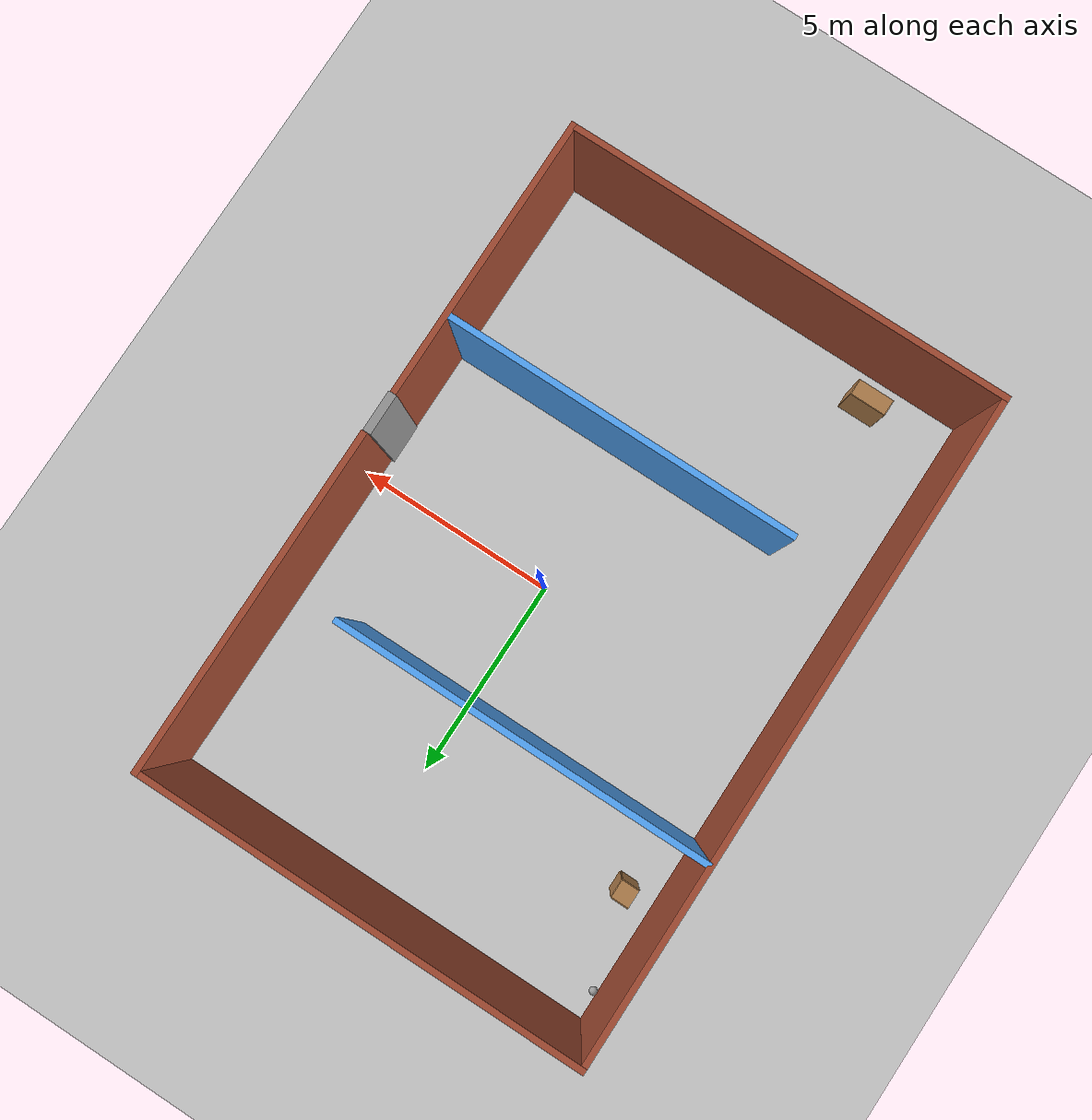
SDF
<sdf version="1.6">
 <world name="default">
  <plugin name="welcome_message" filename="libwelcome_message.so"/>
  <light name="sun" type="directional">
   <pose>0 0 10 0 -0 0</pose>
   <diffuse>0.8 0.8 0.8 1</diffuse>
   <specular>0.2 0.2 0.2 1</specular>
   <attenuation>
    <range>1000</range>
    <constant>0.9</constant>
    <linear>0.01</linear>
    <quadratic>0.001</quadratic>
   </attenuation>
   <direction>-0.5 0.1 -0.9</direction>
  </light>
  <model name="ground_plane">
   <static>1</static>
   <link name="link">
    <collision name="collision">
     <geometry><plane><normal>0 0 1</normal><size>100 100</size></plane></geometry>
     <surface>
      <contact><collide_bitmask>65535</collide_bitmask></contact>
      <friction><ode><mu>100</mu><mu2>50</mu2></ode></friction>
     </surface>
    </collision>
    <visual name="visual">
     <cast_shadows>0</cast_shadows>
     <geometry><plane><normal>0 0 1</normal><size>100 100</size></plane></geometry>
     <material>
      <script><uri>file://media/materials/scripts/gazebo.material</uri><name>Gazebo/Grey</name></script>
     </material>
    </visual>
   </link>
  </model>
  <gravity>0 0 -9.8</gravity>
  <magnetic_field>6e-06 2.3e-05 -4.2e-05</magnetic_field>
  <atmosphere type="adiabatic"/>
  <physics name="default_physics" default="0" type="ode">
   <max_step_size>0.001</max_step_size>
   <real_time_factor>1</real_time_factor>
   <real_time_update_rate>1000</real_time_update_rate>
  </physics>
  <scene><ambient>0.4 0.4 0.4 1</ambient><background>0.7 0.7 0.7 1</background><shadows>1</shadows></scene>
  <spherical_coordinates>
   <surface_model>EARTH_WGS84</surface_model>
   <latitude_deg>0</latitude_deg>
   <longitude_deg>0</longitude_deg>
   <elevation>0</elevation>
   <heading_deg>0</heading_deg>
  </spherical_coordinates>
  <model name="dragonHouse">
   <pose>-0.668267 -0.331134 0 0 -0 1.57463</pose>
   <link name="Door_0">
    <collision name="Door_0_Collision">
     <geometry><box><size>0.990813 0.2 3</size></box></geometry>
     <pose>0 0 1.5 0 -0 0</pose>
    </collision>
    <visual name="Door_0_Visual">
     <pose>0 0 1.5 0 -0 0</pose>
     <geometry><box><size>0.990813 0.2 3</size></box></geometry>
     <material>
      <script><uri>file://media/materials/scripts/gazebo.material</uri><name>Gazebo/Grey</name></script>
     </material>
    </visual>
    <pose>-0.750469 -5.40399 0 0 -0 0.00282</pose>
   </link>
   <link name="Wall_0">
    <collision name="Wall_0_Collision">
     <geometry><box><size>7 0.15 3</size></box></geometry>
     <pose>0 0 1.5 0 -0 0</pose>
    </collision>
    <visual name="Wall_0_Visual">
     <pose>0 0 1.5 0 -0 0</pose>
     <geometry><box><size>7 0.15 3</size></box></geometry>
     <material>
      <script><uri>file://media/materials/scripts/gazebo.material</uri><name>Gazebo/Bricks</name></script>
      <ambient>1 1 1 1</ambient>
     </material>
     <meta><layer>0</layer></meta>
    </visual>
    <pose>-4.75 -5.402 0 0 -0 3.14159</pose>
   </link>
   <link name="Wall_1">
    <collision name="Wall_1_Collision">
     <geometry><box><size>11 0.15 3</size></box></geometry>
     <pose>0 0 1.5 0 -0 0</pose>
    </collision>
    <visual name="Wall_1_Visual">
     <pose>0 0 1.5 0 -0 0</pose>
     <geometry><box><size>11 0.15 3</size></box></geometry>
     <material>
      <script><uri>file://media/materials/scripts/gazebo.material</uri><name>Gazebo/Bricks</name></script>
      <ambient>1 1 1 1</ambient>
     </material>
     <meta><layer>0</layer></meta>
    </visual>
    <pose>-8.175 0.023 0 0 -0 1.5708</pose>
   </link>
   <link name="Wall_10">
    <collision name="Wall_10_Collision">
     <geometry><box><size>9.25 0.15 3</size></box></geometry>
     <pose>0 0 1.5 0 -0 0</pose>
    </collision>
    <visual name="Wall_10_Visual">
     <pose>0 0 1.5 0 -0 0</pose>
     <geometry><box><size>9.25 0.15 3</size></box></geometry>
     <material>
      <script><uri>file://media/materials/scripts/gazebo.material</uri><name>Gazebo/Grey</name></script>
      <ambient>0.333333 0.666667 1 1</ambient>
     </material>
     <meta><layer>0</layer></meta>
    </visual>
    <pose>3.371 0.836 0 0 0 -1.5708</pose>
   </link>
   <link name="Wall_2">
    <collision name="Wall_2_Collision">
     <geometry><box><size>16.5 0.15 3</size></box></geometry>
     <pose>0 0 1.5 0 -0 0</pose>
    </collision>
    <visual name="Wall_2_Visual">
     <pose>0 0 1.5 0 -0 0</pose>
     <geometry><box><size>16.5 0.15 3</size></box></geometry>
     <material>
      <script><uri>file://media/materials/scripts/gazebo.material</uri><name>Gazebo/Bricks</name></script>
      <ambient>1 1 1 1</ambient>
     </material>
     <meta><layer>0</layer></meta>
    </visual>
    <pose>0 5.448 0 0 -0 0</pose>
   </link>
   <link name="Wall_3">
    <collision name="Wall_3_Collision">
     <geometry><box><size>11.046 0.15 3</size></box></geometry>
     <pose>0 0 1.5 0 -0 0</pose>
    </collision>
    <visual name="Wall_3_Visual">
     <pose>0 0 1.5 0 -0 0</pose>
     <geometry><box><size>11.046 0.15 3</size></box></geometry>
     <material>
      <script><uri>file://media/materials/scripts/gazebo.material</uri><name>Gazebo/Bricks</name></script>
      <ambient>1 1 1 1</ambient>
     </material>
     <meta><layer>0</layer></meta>
    </visual>
    <pose>8.175 0 0 0 0 -1.5708</pose>
   </link>
   <link name="Wall_4">
    <collision name="Wall_4_Collision">
     <geometry><box><size>8.5 0.15 3</size></box></geometry>
     <pose>0 0 1.5 0 -0 0</pose>
    </collision>
    <visual name="Wall_4_Visual">
     <pose>0 0 1.5 0 -0 0</pose>
     <geometry><box><size>8.5 0.15 3</size></box></geometry>
     <material>
      <script><uri>file://media/materials/scripts/gazebo.material</uri><name>Gazebo/Bricks</name></script>
      <ambient>1 1 1 1</ambient>
     </material>
     <meta><layer>0</layer></meta>
    </visual>
    <pose>4 -5.448 0 0 -0 3.14159</pose>
   </link>
   <link name="Wall_8">
    <collision name="Wall_8_Collision">
     <geometry><box><size>8.75 0.15 3</size></box></geometry>
     <pose>0 0 1.5 0 -0 0</pose>
    </collision>
    <visual name="Wall_8_Visual">
     <pose>0 0 1.5 0 -0 0</pose>
     <geometry><box><size>8.75 0.15 3</size></box></geometry>
     <material>
      <script><uri>file://media/materials/scripts/gazebo.material</uri><name>Gazebo/Grey</name></script>
      <ambient>0.333333 0.666667 1 1</ambient>
     </material>
     <meta><layer>0</layer></meta>
    </visual>
    <pose>-3.276 -1.053 0 0 0 -1.5708</pose>
   </link>
   <static>1</static>
  </model>
  <model name="bookshelf">
   <static>1</static>
   <link name="link">
    <inertial><mass>1</mass></inertial>
    <collision name="back">
     <pose>0 0.005 0.6 0 -0 0</pose>
     <geometry><box><size>0.9 0.01 1.2</size></box></geometry>
    </collision>
    <visual name="visual1">
     <pose>0 0.005 0.6 0 -0 0</pose>
     <geometry><box><size>0.9 0.01 1.2</size></box></geometry>
     <material>
      <script><uri>file://media/materials/scripts/gazebo.material</uri><name>Gazebo/Wood</name></script>
     </material>
    </visual>
    <collision name="left_side">
     <pose>0.45 -0.195 0.6 0 -0 0</pose>
     <geometry><box><size>0.02 0.4 1.2</size></box></geometry>
    </collision>
    <visual name="visual2">
     <pose>0.45 -0.195 0.6 0 -0 0</pose>
     <geometry><box><size>0.02 0.4 1.2</size></box></geometry>
     <material>
      <script><uri>file://media/materials/scripts/gazebo.material</uri><name>Gazebo/Wood</name></script>
     </material>
    </visual>
    <collision name="right_side">
     <pose>-0.45 -0.195 0.6 0 -0 0</pose>
     <geometry><box><size>0.02 0.4 1.2</size></box></geometry>
    </collision>
    <visual name="visual3">
     <pose>-0.45 -0.195 0.6 0 -0 0</pose>
     <geometry><box><size>0.02 0.4 1.2</size></box></geometry>
     <material>
      <script><uri>file://media/materials/scripts/gazebo.material</uri><name>Gazebo/Wood</name></script>
     </material>
    </visual>
    <collision name="bottom">
     <pose>0 -0.195 0.03 0 -0 0</pose>
     <geometry><box><size>0.88 0.4 0.06</size></box></geometry>
    </collision>
    <visual name="visual4">
     <pose>0 -0.195 0.03 0 -0 0</pose>
     <geometry><box><size>0.88 0.4 0.06</size></box></geometry>
     <material>
      <script><uri>file://media/materials/scripts/gazebo.material</uri><name>Gazebo/Wood</name></script>
     </material>
    </visual>
    <collision name="top">
     <pose>0 -0.195 1.19 0 -0 0</pose>
     <geometry><box><size>0.88 0.4 0.02</size></box></geometry>
    </collision>
    <visual name="visual5">
     <pose>0 -0.195 1.19 0 -0 0</pose>
     <geometry><box><size>0.88 0.4 0.02</size></box></geometry>
     <material>
      <script><uri>file://media/materials/scripts/gazebo.material</uri><name>Gazebo/Wood</name></script>
     </material>
    </visual>
    <collision name="low_shelf">
     <pose>0 -0.195 0.43 0 -0 0</pose>
     <geometry><box><size>0.88 0.4 0.02</size></box></geometry>
    </collision>
    <visual name="visual6">
     <pose>0 -0.195 0.43 0 -0 0</pose>
     <geometry><box><size>0.88 0.4 0.02</size></box></geometry>
     <material>
      <script><uri>file://media/materials/scripts/gazebo.material</uri><name>Gazebo/Wood</name></script>
     </material>
    </visual>
    <collision name="high_shelf">
     <pose>0 -0.195 0.8 0 -0 0</pose>
     <geometry><box><size>0.88 0.4 0.02</size></box></geometry>
    </collision>
    <visual name="visual7">
     <pose>0 -0.195 0.8 0 -0 0</pose>
     <geometry><box><size>0.88 0.4 0.02</size></box></geometry>
     <material>
      <script><uri>file://media/materials/scripts/gazebo.material</uri><name>Gazebo/Wood</name></script>
     </material>
    </visual>
   </link>
   <pose>-3.8806 -7.445 0 0 -0 0</pose>
  </model>
  <model name="cabinet">
   <static>1</static>
   <link name="cabinet_bottom_plate">
    <inertial>
     <pose>0 0 -1 0 -0 0</pose>
     <inertia><ixx>2.05</ixx><ixy>0</ixy><ixz>0</ixz><iyy>2.05</iyy><iyz>0</iyz><izz>2.05</izz></inertia>
     <mass>25</mass>
    </inertial>
    <collision name="cabinet_bottom_plate_geom">
     <pose>0 0 0.01 0 -0 0</pose>
     <geometry><box><size>0.45 0.45 0.02</size></box></geometry>
    </collision>
    <visual name="cabinet_bottom_plate_geom_visual">
     <pose>0 0 0.01 0 -0 0</pose>
     <geometry><box><size>0.45 0.45 0.02</size></box></geometry>
     <material>
      <script><uri>file://media/materials/scripts/gazebo.material</uri><name>Gazebo/Wood</name></script>
     </material>
    </visual>
    <collision name="cabinet_bottom_plate_geom_cabinet_back_plate">
     <pose>0.235 0 0.51 0 -0 0</pose>
     <geometry><box><size>0.02 0.45 1.02</size></box></geometry>
    </collision>
    <visual name="cabinet_bottom_plate_geom_cabinet_back_plate_visual">
     <pose>0.235 0 0.51 0 -0 0</pose>
     <geometry><box><size>0.02 0.45 1.02</size></box></geometry>
     <material>
      <script><uri>file://media/materials/scripts/gazebo.material</uri><name>Gazebo/Wood</name></script>
     </material>
    </visual>
    <collision name="cabinet_bottom_plate_geom_cabinet_left_plate">
     <pose>0 0.235 0.51 0 -0 0</pose>
     <geometry><box><size>0.45 0.02 1.02</size></box></geometry>
    </collision>
    <visual name="cabinet_bottom_plate_geom_cabinet_left_plate_visual">
     <pose>0 0.235 0.51 0 -0 0</pose>
     <geometry><box><size>0.45 0.02 1.02</size></box></geometry>
     <material>
      <script><uri>file://media/materials/scripts/gazebo.material</uri><name>Gazebo/Wood</name></script>
     </material>
    </visual>
    <collision name="cabinet_bottom_plate_geom_cabinet_middle_plate">
     <pose>0 0 0.51 0 -0 0</pose>
     <geometry><box><size>0.45 0.45 0.02</size></box></geometry>
    </collision>
    <visual name="cabinet_bottom_plate_geom_cabinet_middle_plate_visual">
     <pose>0 0 0.51 0 -0 0</pose>
     <geometry><box><size>0.45 0.45 0.02</size></box></geometry>
     <material>
      <script><uri>file://media/materials/scripts/gazebo.material</uri><name>Gazebo/Wood</name></script>
     </material>
    </visual>
    <collision name="cabinet_bottom_plate_geom_cabinet_right_plate">
     <pose>0 -0.235 0.51 0 -0 0</pose>
     <geometry><box><size>0.45 0.02 1.02</size></box></geometry>
    </collision>
    <visual name="cabinet_bottom_plate_geom_cabinet_right_plate_visual">
     <pose>0 -0.235 0.51 0 -0 0</pose>
     <geometry><box><size>0.45 0.02 1.02</size></box></geometry>
     <material>
      <script><uri>file://media/materials/scripts/gazebo.material</uri><name>Gazebo/Wood</name></script>
     </material>
    </visual>
    <collision name="cabinet_bottom_plate_geom_cabinet_top_plate">
     <pose>0 0 1.01 0 -0 0</pose>
     <geometry><box><size>0.45 0.45 0.02</size></box></geometry>
    </collision>
    <visual name="cabinet_bottom_plate_geom_cabinet_top_plate_visual">
     <pose>0 0 1.01 0 -0 0</pose>
     <geometry><box><size>0.45 0.45 0.02</size></box></geometry>
     <material>
      <script><uri>file://media/materials/scripts/gazebo.material</uri><name>Gazebo/Wood</name></script>
     </material>
    </visual>
   </link>
   <pose>-5.261 4.71628 0 0 -0 0</pose>
  </model>
  <model name="my_ball">
   <link name="link_0">
    <inertial>
     <mass>1</mass>
     <inertia><ixx>0.1</ixx><ixy>0</ixy><ixz>0</ixz><iyy>0.1</iyy><iyz>0</iyz><izz>0.1</izz></inertia>
    </inertial>
    <visual name="visual">
     <geometry><sphere><radius>0.1</radius></sphere></geometry>
     <material>
      <lighting>1</lighting>
      <script><uri>file://media/materials/scripts/gazebo.material</uri><name>Gazebo/Grey</name></script>
      <shader type="pixel"><normal_map>__default__</normal_map></shader>
      <ambient>1 1 1 1</ambient>
      <diffuse>1 1 1 1</diffuse>
      <specular>1 1 1 1</specular>
      <emissive>1 1 1 1</emissive>
     </material>
    </visual>
    <collision name="collision">
     <geometry><sphere><radius>0.1</radius></sphere></geometry>
     <surface>
      <friction>
       <ode><mu>1</mu><mu2>1</mu2><fdir1>0 0 0</fdir1><slip1>0</slip1><slip2>0</slip2></ode>
       <torsional>
        <coefficient>1</coefficient>
        <patch_radius>0</patch_radius>
        <surface_radius>0</surface_radius>
        <use_patch_radius>1</use_patch_radius>
        <ode><slip>0</slip></ode>
       </torsional>
      </friction>
      <bounce><restitution_coefficient>0</restitution_coefficient><threshold>1e+06</threshold></bounce>
      <contact>
       <collide_without_contact>0</collide_without_contact>
       <collide_without_contact_bitmask>1</collide_without_contact_bitmask>
       <collide_bitmask>1</collide_bitmask>
       <ode>
        <soft_cfm>0</soft_cfm>
        <soft_erp>0.2</soft_erp>
        <kp>1e+13</kp>
        <kd>1</kd>
        <max_vel>0.01</max_vel>
        <min_depth>0</min_depth>
       </ode>
       <bullet>
        <split_impulse>1</split_impulse>
        <split_impulse_penetration_threshold>-0.01</split_impulse_penetration_threshold>
        <soft_cfm>0</soft_cfm>
        <soft_erp>0.2</soft_erp>
        <kp>1e+13</kp>
        <kd>1</kd>
       </bullet>
      </contact>
     </surface>
    </collision>
   </link>
   <static>0</static>
   <pose>-5.9651 7.06156 0.1 0.987564 -0.310059 -3.08091</pose>
  </model>
 </world>
</sdf>
